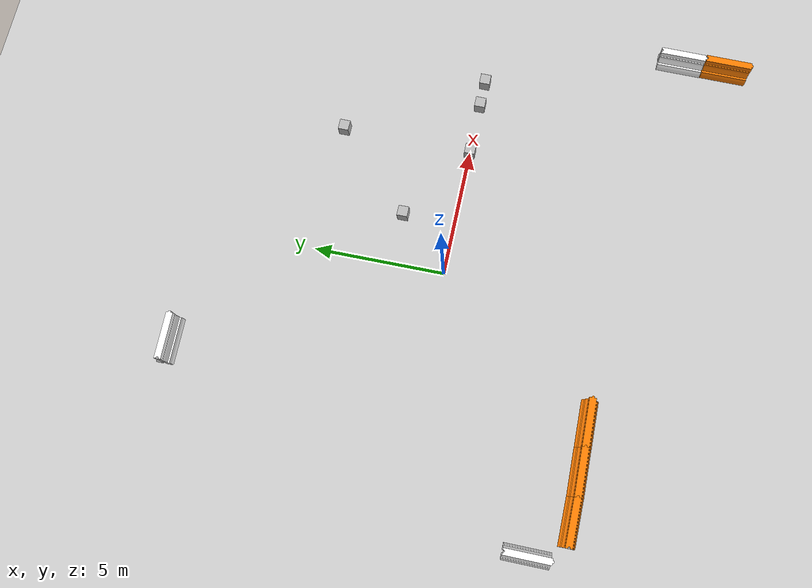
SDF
<sdf version="1.4">
 <world name="default">
  <light name="sun" type="directional">
   <pose>0 0 10 0 -0 0</pose>
   <diffuse>0.8 0.8 0.8 1</diffuse>
   <specular>0.2 0.2 0.2 1</specular>
   <attenuation>
    <range>1000</range>
    <constant>0.9</constant>
    <linear>0.01</linear>
    <quadratic>0.001</quadratic>
   </attenuation>
   <direction>-0.5 0.1 -0.9</direction>
  </light>
  <model name="ground_plane">
   <static>1</static>
   <link name="link">
    <collision name="collision">
     <geometry><plane><normal>0 0 1</normal><size>100 100</size></plane></geometry>
     <surface><friction><ode><mu>100</mu><mu2>50</mu2></ode></friction></surface>
    </collision>
    <visual name="visual">
     <cast_shadows>0</cast_shadows>
     <geometry><plane><normal>0 0 1</normal><size>100 100</size></plane></geometry>
     <material>
      <script><uri>file://media/materials/scripts/gazebo.material</uri><name>Gazebo/Grey</name></script>
     </material>
    </visual>
    <velocity_decay><linear>0</linear><angular>0</angular></velocity_decay>
   </link>
  </model>
  <physics type="ode">
   <max_step_size>0.001</max_step_size>
   <real_time_factor>1</real_time_factor>
   <real_time_update_rate>1000</real_time_update_rate>
   <gravity>0 0 -9.8</gravity>
  </physics>
  <scene><ambient>0.4 0.4 0.4 1</ambient><background>0.7 0.7 0.7 1</background><shadows>1</shadows></scene>
  <spherical_coordinates>
   <surface_model>EARTH_WGS84</surface_model>
   <latitude_deg>0</latitude_deg>
   <longitude_deg>0</longitude_deg>
   <elevation>0</elevation>
   <heading_deg>0</heading_deg>
  </spherical_coordinates>
  <model name="drc_practice_organge_jersey_barrier">
   <static>1</static>
   <link name="link">
    <visual name="visual">
     <geometry>
      <mesh><uri>model://drc_practice_orange_jersey_barrier/meshes/jersey_barrier.dae</uri></mesh>
     </geometry>
    </visual>
    <collision name="collision">
     <geometry>
      <mesh><uri>model://drc_practice_orange_jersey_barrier/meshes/jersey_barrier.dae</uri></mesh>
     </geometry>
    </collision>
    <velocity_decay><linear>0</linear><angular>0</angular></velocity_decay>
   </link>
   <pose>-4.54889 -6.23392 0 0 -0 1.59364</pose>
  </model>
  <model name="drc_practice_white_jersey_barrier">
   <static>1</static>
   <link name="link">
    <visual name="visual">
     <geometry>
      <mesh><uri>model://drc_practice_white_jersey_barrier/meshes/jersey_barrier.dae</uri></mesh>
     </geometry>
    </visual>
    <collision name="collision">
     <geometry>
      <mesh><uri>model://drc_practice_white_jersey_barrier/meshes/jersey_barrier.dae</uri></mesh>
     </geometry>
    </collision>
    <velocity_decay><linear>0</linear><angular>0</angular></velocity_decay>
   </link>
   <pose>-9.48699 -4.9367 0 0 -0 0</pose>
  </model>
  <model name="drc_practice_organge_jersey_barrier_0">
   <static>1</static>
   <link name="link">
    <visual name="visual">
     <geometry>
      <mesh><uri>model://drc_practice_orange_jersey_barrier/meshes/jersey_barrier.dae</uri></mesh>
     </geometry>
    </visual>
    <collision name="collision">
     <geometry>
      <mesh><uri>model://drc_practice_orange_jersey_barrier/meshes/jersey_barrier.dae</uri></mesh>
     </geometry>
    </collision>
    <velocity_decay><linear>0</linear><angular>0</angular></velocity_decay>
   </link>
   <pose>-6.30934 -6.26351 0 0 -0 1.59467</pose>
  </model>
  <model name="drc_practice_organge_jersey_barrier_1">
   <static>1</static>
   <link name="link">
    <visual name="visual">
     <geometry>
      <mesh><uri>model://drc_practice_orange_jersey_barrier/meshes/jersey_barrier.dae</uri></mesh>
     </geometry>
    </visual>
    <collision name="collision">
     <geometry>
      <mesh><uri>model://drc_practice_orange_jersey_barrier/meshes/jersey_barrier.dae</uri></mesh>
     </geometry>
    </collision>
    <velocity_decay><linear>0</linear><angular>0</angular></velocity_decay>
   </link>
   <pose>-8.06556 -6.2736 0 0 -0 1.57109</pose>
  </model>
  <model name="drc_practice_white_jersey_barrier_0">
   <static>1</static>
   <link name="link">
    <visual name="visual">
     <geometry>
      <mesh><uri>model://drc_practice_white_jersey_barrier/meshes/jersey_barrier.dae</uri></mesh>
     </geometry>
    </visual>
    <collision name="collision">
     <geometry>
      <mesh><uri>model://drc_practice_white_jersey_barrier/meshes/jersey_barrier.dae</uri></mesh>
     </geometry>
    </collision>
    <velocity_decay><linear>0</linear><angular>0</angular></velocity_decay>
   </link>
   <pose>10.3176 -7.4365 0 0 -0 0</pose>
  </model>
  <model name="drc_practice_white_jersey_barrier_1">
   <static>1</static>
   <link name="link">
    <visual name="visual">
     <geometry>
      <mesh><uri>model://drc_practice_white_jersey_barrier/meshes/jersey_barrier.dae</uri></mesh>
     </geometry>
    </visual>
    <collision name="collision">
     <geometry>
      <mesh><uri>model://drc_practice_white_jersey_barrier/meshes/jersey_barrier.dae</uri></mesh>
     </geometry>
    </collision>
    <velocity_decay><linear>0</linear><angular>0</angular></velocity_decay>
   </link>
   <pose>-4.54271 9.38577 0 0 -0 1.59123</pose>
  </model>
  <model name="drc_practice_organge_jersey_barrier_2">
   <static>1</static>
   <link name="link">
    <visual name="visual">
     <geometry>
      <mesh><uri>model://drc_practice_orange_jersey_barrier/meshes/jersey_barrier.dae</uri></mesh>
     </geometry>
    </visual>
    <collision name="collision">
     <geometry>
      <mesh><uri>model://drc_practice_orange_jersey_barrier/meshes/jersey_barrier.dae</uri></mesh>
     </geometry>
    </collision>
    <velocity_decay><linear>0</linear><angular>0</angular></velocity_decay>
   </link>
   <pose>10.3218 -9.21435 0 0 -0 0</pose>
  </model>
  <model name="box">
   <pose>2 2 0 0 0 0</pose>
   <link name="link">
    <kinematic>true</kinematic>
    <collision name="collision">
     <geometry><box><size>0.4 0.4 1.0</size></box></geometry>
     <surface><friction><ode><mu>0.0</mu><mu2>0.0</mu2></ode></friction></surface>
    </collision>
    <visual name="visual"><geometry><box><size>0.4 0.4 1.0</size></box></geometry></visual>
   </link>
   <plugin name="random" filename="libRandomVelocityPlugin.so">
    <link>link</link>
    <initial_velocity>0 0.5 0</initial_velocity>
    <velocity_factor>0.5</velocity_factor>
    <update_period>1</update_period>
    <min_z>0</min_z>
    <max_z>0</max_z>
   </plugin>
  </model>
  <model name="box1">
   <pose>5 5 0 0 0 0</pose>
   <link name="link">
    <kinematic>true</kinematic>
    <collision name="collision">
     <geometry><box><size>0.4 0.4 1.0</size></box></geometry>
     <surface><friction><ode><mu>0.0</mu><mu2>0.0</mu2></ode></friction></surface>
    </collision>
    <visual name="visual"><geometry><box><size>0.4 0.4 1.0</size></box></geometry></visual>
   </link>
   <plugin name="random" filename="libRandomVelocityPlugin.so">
    <link>link</link>
    <initial_velocity>0 0.5 0</initial_velocity>
    <velocity_factor>0.5</velocity_factor>
    <update_period>1</update_period>
    <min_z>0</min_z>
    <max_z>0</max_z>
   </plugin>
  </model>
  <model name="box2">
   <pose>8 0 0 0 0 0</pose>
   <link name="link">
    <kinematic>true</kinematic>
    <collision name="collision">
     <geometry><box><size>0.4 0.4 1.0</size></box></geometry>
     <surface><friction><ode><mu>0.0</mu><mu2>0.0</mu2></ode></friction></surface>
    </collision>
    <visual name="visual"><geometry><box><size>0.4 0.4 1.0</size></box></geometry></visual>
   </link>
   <plugin name="random" filename="libRandomVelocityPlugin.so">
    <link>link</link>
    <initial_velocity>0 0.5 0</initial_velocity>
    <velocity_factor>0.5</velocity_factor>
    <update_period>1</update_period>
    <min_z>0</min_z>
    <max_z>0</max_z>
   </plugin>
  </model>
  <model name="box3">
   <pose>5 0 0 0 0 0</pose>
   <link name="link">
    <kinematic>true</kinematic>
    <collision name="collision">
     <geometry><box><size>0.4 0.4 1.0</size></box></geometry>
     <surface><friction><ode><mu>0.0</mu><mu2>0.0</mu2></ode></friction></surface>
    </collision>
    <visual name="visual"><geometry><box><size>0.4 0.4 1.0</size></box></geometry></visual>
   </link>
   <plugin name="random" filename="libRandomVelocityPlugin.so">
    <link>link</link>
    <initial_velocity>0 0.5 0</initial_velocity>
    <velocity_factor>0.5</velocity_factor>
    <update_period>1</update_period>
    <min_z>0</min_z>
    <max_z>0</max_z>
   </plugin>
  </model>
  <model name="box4">
   <pose>7 0 0 0 0 0</pose>
   <link name="link">
    <kinematic>true</kinematic>
    <collision name="collision">
     <geometry><box><size>0.4 0.4 1.0</size></box></geometry>
     <surface><friction><ode><mu>0.0</mu><mu2>0.0</mu2></ode></friction></surface>
    </collision>
    <visual name="visual"><geometry><box><size>0.4 0.4 1.0</size></box></geometry></visual>
   </link>
   <plugin name="random" filename="libRandomVelocityPlugin.so">
    <link>link</link>
    <initial_velocity>0 0.5 0</initial_velocity>
    <velocity_factor>0.5</velocity_factor>
    <update_period>1</update_period>
    <min_z>0</min_z>
    <max_z>0</max_z>
   </plugin>
  </model>
 </world>
</sdf>
